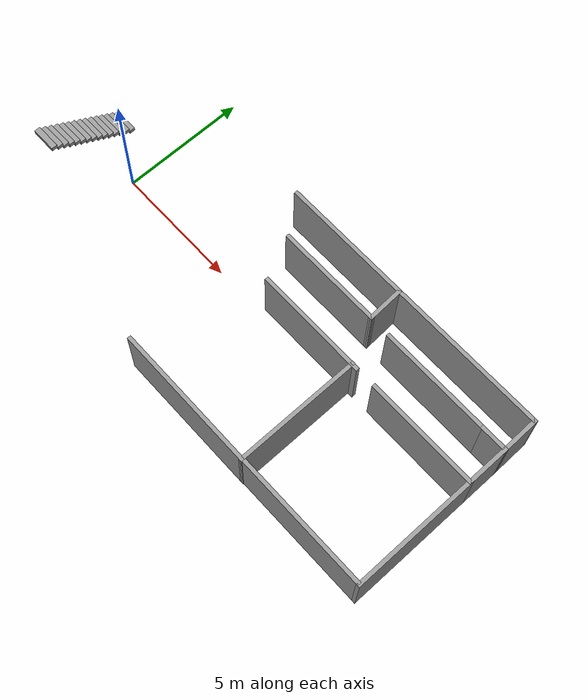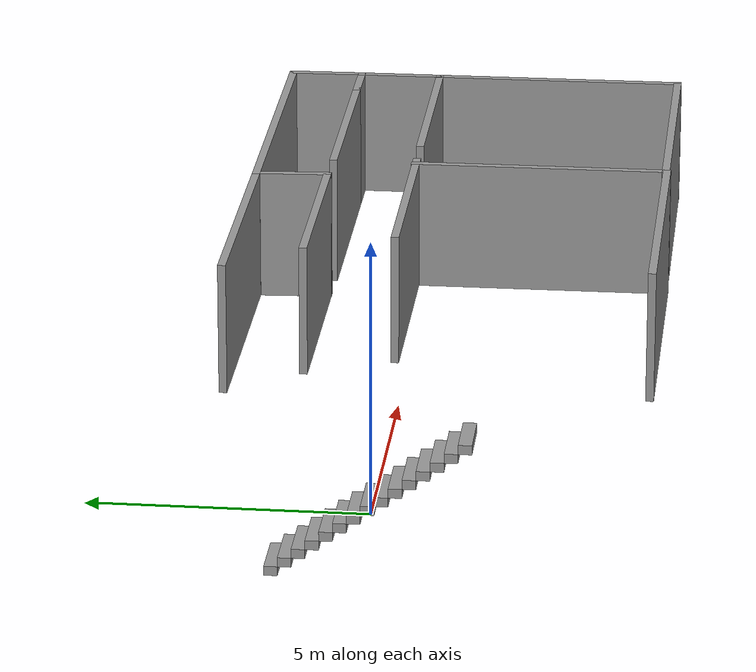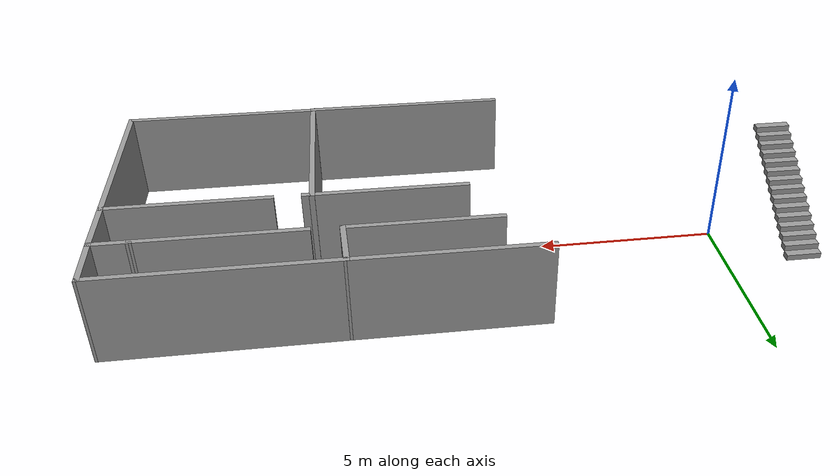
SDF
<sdf version="1.6">
 <world name="default">
  <model name="inco_planta_baja_0">
   <link name="Stairs_0">
    <visual name="Stairs_0_Visual_2">
     <pose>-9.24623 1.59162 0.416667 0 -0 0</pose>
     <geometry><box><size>1 0.233333 0.166667</size></box></geometry>
     <material>
      <script><uri>file://media/materials/scripts/gazebo.material</uri><name>Gazebo/Grey</name></script>
      <ambient>1 1 1 1</ambient>
      <diffuse>0.7 0.7 0.7 1</diffuse>
      <specular>0.01 0.01 0.01 1</specular>
      <emissive>0 0 0 1</emissive>
     </material>
    </visual>
    <visual name="Stairs_0_Visual_0">
     <pose>-9.24623 2.05829 0.083333 0 -0 0</pose>
     <geometry><box><size>1 0.233333 0.166667</size></box></geometry>
     <material>
      <script><uri>file://media/materials/scripts/gazebo.material</uri><name>Gazebo/Grey</name></script>
      <ambient>1 1 1 1</ambient>
      <diffuse>0.7 0.7 0.7 1</diffuse>
      <specular>0.01 0.01 0.01 1</specular>
      <emissive>0 0 0 1</emissive>
     </material>
    </visual>
    <visual name="Stairs_0_Visual_1">
     <pose>-9.24623 1.82496 0.25 0 -0 0</pose>
     <geometry><box><size>1 0.233333 0.166667</size></box></geometry>
     <material>
      <script><uri>file://media/materials/scripts/gazebo.material</uri><name>Gazebo/Grey</name></script>
      <ambient>1 1 1 1</ambient>
      <diffuse>0.7 0.7 0.7 1</diffuse>
      <specular>0.01 0.01 0.01 1</specular>
      <emissive>0 0 0 1</emissive>
     </material>
    </visual>
    <visual name="Stairs_0_Visual_3">
     <pose>-9.24623 1.35829 0.583333 0 -0 0</pose>
     <geometry><box><size>1 0.233333 0.166667</size></box></geometry>
     <material>
      <script><uri>file://media/materials/scripts/gazebo.material</uri><name>Gazebo/Grey</name></script>
      <ambient>1 1 1 1</ambient>
      <diffuse>0.7 0.7 0.7 1</diffuse>
      <specular>0.01 0.01 0.01 1</specular>
      <emissive>0 0 0 1</emissive>
     </material>
    </visual>
    <visual name="Stairs_0_Visual_4">
     <pose>-9.24623 1.12495 0.75 0 -0 0</pose>
     <geometry><box><size>1 0.233333 0.166667</size></box></geometry>
     <material>
      <script><uri>file://media/materials/scripts/gazebo.material</uri><name>Gazebo/Grey</name></script>
      <ambient>1 1 1 1</ambient>
      <diffuse>0.7 0.7 0.7 1</diffuse>
      <specular>0.01 0.01 0.01 1</specular>
      <emissive>0 0 0 1</emissive>
     </material>
    </visual>
    <visual name="Stairs_0_Visual_5">
     <pose>-9.24623 0.891622 0.916667 0 -0 0</pose>
     <geometry><box><size>1 0.233333 0.166667</size></box></geometry>
     <material>
      <script><uri>file://media/materials/scripts/gazebo.material</uri><name>Gazebo/Grey</name></script>
      <ambient>1 1 1 1</ambient>
      <diffuse>0.7 0.7 0.7 1</diffuse>
      <specular>0.01 0.01 0.01 1</specular>
      <emissive>0 0 0 1</emissive>
     </material>
    </visual>
    <visual name="Stairs_0_Visual_6">
     <pose>-9.24623 0.658289 1.08333 0 -0 0</pose>
     <geometry><box><size>1 0.233333 0.166667</size></box></geometry>
     <material>
      <script><uri>file://media/materials/scripts/gazebo.material</uri><name>Gazebo/Grey</name></script>
      <ambient>1 1 1 1</ambient>
      <diffuse>0.7 0.7 0.7 1</diffuse>
      <specular>0.01 0.01 0.01 1</specular>
      <emissive>0 0 0 1</emissive>
     </material>
    </visual>
    <visual name="Stairs_0_Visual_8">
     <pose>-9.24623 0.191622 1.41667 0 -0 0</pose>
     <geometry><box><size>1 0.233333 0.166667</size></box></geometry>
     <material>
      <script><uri>file://media/materials/scripts/gazebo.material</uri><name>Gazebo/Grey</name></script>
      <ambient>1 1 1 1</ambient>
      <diffuse>0.7 0.7 0.7 1</diffuse>
      <specular>0.01 0.01 0.01 1</specular>
      <emissive>0 0 0 1</emissive>
     </material>
    </visual>
    <visual name="Stairs_0_Visual_7">
     <pose>-9.24623 0.424955 1.25 0 -0 0</pose>
     <geometry><box><size>1 0.233333 0.166667</size></box></geometry>
     <material>
      <script><uri>file://media/materials/scripts/gazebo.material</uri><name>Gazebo/Grey</name></script>
      <ambient>1 1 1 1</ambient>
      <diffuse>0.7 0.7 0.7 1</diffuse>
      <specular>0.01 0.01 0.01 1</specular>
      <emissive>0 0 0 1</emissive>
     </material>
    </visual>
    <visual name="Stairs_0_Visual_9">
     <pose>-9.24623 -0.041711 1.58333 0 -0 0</pose>
     <geometry><box><size>1 0.233333 0.166667</size></box></geometry>
     <material>
      <script><uri>file://media/materials/scripts/gazebo.material</uri><name>Gazebo/Grey</name></script>
      <ambient>1 1 1 1</ambient>
      <diffuse>0.7 0.7 0.7 1</diffuse>
      <specular>0.01 0.01 0.01 1</specular>
      <emissive>0 0 0 1</emissive>
     </material>
    </visual>
    <visual name="Stairs_0_Visual_10">
     <pose>-9.24623 -0.275045 1.75 0 -0 0</pose>
     <geometry><box><size>1 0.233333 0.166667</size></box></geometry>
     <material>
      <script><uri>file://media/materials/scripts/gazebo.material</uri><name>Gazebo/Grey</name></script>
      <ambient>1 1 1 1</ambient>
      <diffuse>0.7 0.7 0.7 1</diffuse>
      <specular>0.01 0.01 0.01 1</specular>
      <emissive>0 0 0 1</emissive>
     </material>
    </visual>
    <visual name="Stairs_0_Visual_11">
     <pose>-9.24623 -0.508378 1.91667 0 -0 0</pose>
     <geometry><box><size>1 0.233333 0.166667</size></box></geometry>
     <material>
      <script><uri>file://media/materials/scripts/gazebo.material</uri><name>Gazebo/Grey</name></script>
      <ambient>1 1 1 1</ambient>
      <diffuse>0.7 0.7 0.7 1</diffuse>
      <specular>0.01 0.01 0.01 1</specular>
      <emissive>0 0 0 1</emissive>
     </material>
    </visual>
    <visual name="Stairs_0_Visual_12">
     <pose>-9.24623 -0.741711 2.08333 0 -0 0</pose>
     <geometry><box><size>1 0.233333 0.166667</size></box></geometry>
     <material>
      <script><uri>file://media/materials/scripts/gazebo.material</uri><name>Gazebo/Grey</name></script>
      <ambient>1 1 1 1</ambient>
      <diffuse>0.7 0.7 0.7 1</diffuse>
      <specular>0.01 0.01 0.01 1</specular>
      <emissive>0 0 0 1</emissive>
     </material>
    </visual>
    <visual name="Stairs_0_Visual_13">
     <pose>-9.24623 -0.975045 2.25 0 -0 0</pose>
     <geometry><box><size>1 0.233333 0.166667</size></box></geometry>
     <material>
      <script><uri>file://media/materials/scripts/gazebo.material</uri><name>Gazebo/Grey</name></script>
      <ambient>1 1 1 1</ambient>
      <diffuse>0.7 0.7 0.7 1</diffuse>
      <specular>0.01 0.01 0.01 1</specular>
      <emissive>0 0 0 1</emissive>
     </material>
    </visual>
    <visual name="Stairs_0_Visual_14">
     <pose>-9.24623 -1.20838 2.41667 0 -0 0</pose>
     <geometry><box><size>1 0.233333 0.166667</size></box></geometry>
     <material>
      <script><uri>file://media/materials/scripts/gazebo.material</uri><name>Gazebo/Grey</name></script>
      <ambient>1 1 1 1</ambient>
      <diffuse>0.7 0.7 0.7 1</diffuse>
      <specular>0.01 0.01 0.01 1</specular>
      <emissive>0 0 0 1</emissive>
     </material>
    </visual>
    <collision name="Stairs_0_Collision_0">
     <pose>-9.24623 2.05829 0.083333 0 -0 0</pose>
     <geometry><box><size>1 0.233333 0.166667</size></box></geometry>
     <surface>
      <friction>
       <ode><mu>1</mu><mu2>1</mu2><fdir1>0 0 0</fdir1><slip1>0</slip1><slip2>0</slip2></ode>
       <torsional>
        <coefficient>1</coefficient>
        <patch_radius>0</patch_radius>
        <surface_radius>0</surface_radius>
        <use_patch_radius>1</use_patch_radius>
        <ode><slip>0</slip></ode>
       </torsional>
      </friction>
      <bounce><restitution_coefficient>0</restitution_coefficient><threshold>1e+06</threshold></bounce>
      <contact>
       <collide_without_contact>0</collide_without_contact>
       <collide_without_contact_bitmask>1</collide_without_contact_bitmask>
       <collide_bitmask>1</collide_bitmask>
       <ode>
        <soft_cfm>0</soft_cfm>
        <soft_erp>0.2</soft_erp>
        <kp>1e+13</kp>
        <kd>1</kd>
        <max_vel>0.01</max_vel>
        <min_depth>0</min_depth>
       </ode>
       <bullet>
        <split_impulse>1</split_impulse>
        <split_impulse_penetration_threshold>-0.01</split_impulse_penetration_threshold>
        <soft_cfm>0</soft_cfm>
        <soft_erp>0.2</soft_erp>
        <kp>1e+13</kp>
        <kd>1</kd>
       </bullet>
      </contact>
     </surface>
    </collision>
    <collision name="Stairs_0_Collision_1">
     <pose>-9.24623 1.82496 0.25 0 -0 0</pose>
     <geometry><box><size>1 0.233333 0.166667</size></box></geometry>
     <surface>
      <friction>
       <ode><mu>1</mu><mu2>1</mu2><fdir1>0 0 0</fdir1><slip1>0</slip1><slip2>0</slip2></ode>
       <torsional>
        <coefficient>1</coefficient>
        <patch_radius>0</patch_radius>
        <surface_radius>0</surface_radius>
        <use_patch_radius>1</use_patch_radius>
        <ode><slip>0</slip></ode>
       </torsional>
      </friction>
      <bounce><restitution_coefficient>0</restitution_coefficient><threshold>1e+06</threshold></bounce>
      <contact>
       <collide_without_contact>0</collide_without_contact>
       <collide_without_contact_bitmask>1</collide_without_contact_bitmask>
       <collide_bitmask>1</collide_bitmask>
       <ode>
        <soft_cfm>0</soft_cfm>
        <soft_erp>0.2</soft_erp>
        <kp>1e+13</kp>
        <kd>1</kd>
        <max_vel>0.01</max_vel>
        <min_depth>0</min_depth>
       </ode>
       <bullet>
        <split_impulse>1</split_impulse>
        <split_impulse_penetration_threshold>-0.01</split_impulse_penetration_threshold>
        <soft_cfm>0</soft_cfm>
        <soft_erp>0.2</soft_erp>
        <kp>1e+13</kp>
        <kd>1</kd>
       </bullet>
      </contact>
     </surface>
    </collision>
    <collision name="Stairs_0_Collision_7">
     <pose>-9.24623 0.424955 1.25 0 -0 0</pose>
     <geometry><box><size>1 0.233333 0.166667</size></box></geometry>
     <surface>
      <friction>
       <ode><mu>1</mu><mu2>1</mu2><fdir1>0 0 0</fdir1><slip1>0</slip1><slip2>0</slip2></ode>
       <torsional>
        <coefficient>1</coefficient>
        <patch_radius>0</patch_radius>
        <surface_radius>0</surface_radius>
        <use_patch_radius>1</use_patch_radius>
        <ode><slip>0</slip></ode>
       </torsional>
      </friction>
      <bounce><restitution_coefficient>0</restitution_coefficient><threshold>1e+06</threshold></bounce>
      <contact>
       <collide_without_contact>0</collide_without_contact>
       <collide_without_contact_bitmask>1</collide_without_contact_bitmask>
       <collide_bitmask>1</collide_bitmask>
       <ode>
        <soft_cfm>0</soft_cfm>
        <soft_erp>0.2</soft_erp>
        <kp>1e+13</kp>
        <kd>1</kd>
        <max_vel>0.01</max_vel>
        <min_depth>0</min_depth>
       </ode>
       <bullet>
        <split_impulse>1</split_impulse>
        <split_impulse_penetration_threshold>-0.01</split_impulse_penetration_threshold>
        <soft_cfm>0</soft_cfm>
        <soft_erp>0.2</soft_erp>
        <kp>1e+13</kp>
        <kd>1</kd>
       </bullet>
      </contact>
     </surface>
    </collision>
    <collision name="Stairs_0_Collision_2">
     <pose>-9.24623 1.59162 0.416667 0 -0 0</pose>
     <geometry><box><size>1 0.233333 0.166667</size></box></geometry>
     <surface>
      <friction>
       <ode><mu>1</mu><mu2>1</mu2><fdir1>0 0 0</fdir1><slip1>0</slip1><slip2>0</slip2></ode>
       <torsional>
        <coefficient>1</coefficient>
        <patch_radius>0</patch_radius>
        <surface_radius>0</surface_radius>
        <use_patch_radius>1</use_patch_radius>
        <ode><slip>0</slip></ode>
       </torsional>
      </friction>
      <bounce><restitution_coefficient>0</restitution_coefficient><threshold>1e+06</threshold></bounce>
      <contact>
       <collide_without_contact>0</collide_without_contact>
       <collide_without_contact_bitmask>1</collide_without_contact_bitmask>
       <collide_bitmask>1</collide_bitmask>
       <ode>
        <soft_cfm>0</soft_cfm>
        <soft_erp>0.2</soft_erp>
        <kp>1e+13</kp>
        <kd>1</kd>
        <max_vel>0.01</max_vel>
        <min_depth>0</min_depth>
       </ode>
       <bullet>
        <split_impulse>1</split_impulse>
        <split_impulse_penetration_threshold>-0.01</split_impulse_penetration_threshold>
        <soft_cfm>0</soft_cfm>
        <soft_erp>0.2</soft_erp>
        <kp>1e+13</kp>
        <kd>1</kd>
       </bullet>
      </contact>
     </surface>
    </collision>
    <collision name="Stairs_0_Collision_3">
     <pose>-9.24623 1.35829 0.583333 0 -0 0</pose>
     <geometry><box><size>1 0.233333 0.166667</size></box></geometry>
     <surface>
      <friction>
       <ode><mu>1</mu><mu2>1</mu2><fdir1>0 0 0</fdir1><slip1>0</slip1><slip2>0</slip2></ode>
       <torsional>
        <coefficient>1</coefficient>
        <patch_radius>0</patch_radius>
        <surface_radius>0</surface_radius>
        <use_patch_radius>1</use_patch_radius>
        <ode><slip>0</slip></ode>
       </torsional>
      </friction>
      <bounce><restitution_coefficient>0</restitution_coefficient><threshold>1e+06</threshold></bounce>
      <contact>
       <collide_without_contact>0</collide_without_contact>
       <collide_without_contact_bitmask>1</collide_without_contact_bitmask>
       <collide_bitmask>1</collide_bitmask>
       <ode>
        <soft_cfm>0</soft_cfm>
        <soft_erp>0.2</soft_erp>
        <kp>1e+13</kp>
        <kd>1</kd>
        <max_vel>0.01</max_vel>
        <min_depth>0</min_depth>
       </ode>
       <bullet>
        <split_impulse>1</split_impulse>
        <split_impulse_penetration_threshold>-0.01</split_impulse_penetration_threshold>
        <soft_cfm>0</soft_cfm>
        <soft_erp>0.2</soft_erp>
        <kp>1e+13</kp>
        <kd>1</kd>
       </bullet>
      </contact>
     </surface>
    </collision>
    <collision name="Stairs_0_Collision_4">
     <pose>-9.24623 1.12495 0.75 0 -0 0</pose>
     <geometry><box><size>1 0.233333 0.166667</size></box></geometry>
     <surface>
      <friction>
       <ode><mu>1</mu><mu2>1</mu2><fdir1>0 0 0</fdir1><slip1>0</slip1><slip2>0</slip2></ode>
       <torsional>
        <coefficient>1</coefficient>
        <patch_radius>0</patch_radius>
        <surface_radius>0</surface_radius>
        <use_patch_radius>1</use_patch_radius>
        <ode><slip>0</slip></ode>
       </torsional>
      </friction>
      <bounce><restitution_coefficient>0</restitution_coefficient><threshold>1e+06</threshold></bounce>
      <contact>
       <collide_without_contact>0</collide_without_contact>
       <collide_without_contact_bitmask>1</collide_without_contact_bitmask>
       <collide_bitmask>1</collide_bitmask>
       <ode>
        <soft_cfm>0</soft_cfm>
        <soft_erp>0.2</soft_erp>
        <kp>1e+13</kp>
        <kd>1</kd>
        <max_vel>0.01</max_vel>
        <min_depth>0</min_depth>
       </ode>
       <bullet>
        <split_impulse>1</split_impulse>
        <split_impulse_penetration_threshold>-0.01</split_impulse_penetration_threshold>
        <soft_cfm>0</soft_cfm>
        <soft_erp>0.2</soft_erp>
        <kp>1e+13</kp>
        <kd>1</kd>
       </bullet>
      </contact>
     </surface>
    </collision>
    <collision name="Stairs_0_Collision_5">
     <pose>-9.24623 0.891622 0.916667 0 -0 0</pose>
     <geometry><box><size>1 0.233333 0.166667</size></box></geometry>
     <surface>
      <friction>
       <ode><mu>1</mu><mu2>1</mu2><fdir1>0 0 0</fdir1><slip1>0</slip1><slip2>0</slip2></ode>
       <torsional>
        <coefficient>1</coefficient>
        <patch_radius>0</patch_radius>
        <surface_radius>0</surface_radius>
        <use_patch_radius>1</use_patch_radius>
        <ode><slip>0</slip></ode>
       </torsional>
      </friction>
      <bounce><restitution_coefficient>0</restitution_coefficient><threshold>1e+06</threshold></bounce>
      <contact>
       <collide_without_contact>0</collide_without_contact>
       <collide_without_contact_bitmask>1</collide_without_contact_bitmask>
       <collide_bitmask>1</collide_bitmask>
       <ode>
        <soft_cfm>0</soft_cfm>
        <soft_erp>0.2</soft_erp>
        <kp>1e+13</kp>
        <kd>1</kd>
        <max_vel>0.01</max_vel>
        <min_depth>0</min_depth>
       </ode>
       <bullet>
        <split_impulse>1</split_impulse>
        <split_impulse_penetration_threshold>-0.01</split_impulse_penetration_threshold>
        <soft_cfm>0</soft_cfm>
        <soft_erp>0.2</soft_erp>
        <kp>1e+13</kp>
        <kd>1</kd>
       </bullet>
      </contact>
     </surface>
    </collision>
    <collision name="Stairs_0_Collision_6">
     <pose>-9.24623 0.658289 1.08333 0 -0 0</pose>
     <geometry><box><size>1 0.233333 0.166667</size></box></geometry>
     <surface>
      <friction>
       <ode><mu>1</mu><mu2>1</mu2><fdir1>0 0 0</fdir1><slip1>0</slip1><slip2>0</slip2></ode>
       <torsional>
        <coefficient>1</coefficient>
        <patch_radius>0</patch_radius>
        <surface_radius>0</surface_radius>
        <use_patch_radius>1</use_patch_radius>
        <ode><slip>0</slip></ode>
       </torsional>
      </friction>
      <bounce><restitution_coefficient>0</restitution_coefficient><threshold>1e+06</threshold></bounce>
      <contact>
       <collide_without_contact>0</collide_without_contact>
       <collide_without_contact_bitmask>1</collide_without_contact_bitmask>
       <collide_bitmask>1</collide_bitmask>
       <ode>
        <soft_cfm>0</soft_cfm>
        <soft_erp>0.2</soft_erp>
        <kp>1e+13</kp>
        <kd>1</kd>
        <max_vel>0.01</max_vel>
        <min_depth>0</min_depth>
       </ode>
       <bullet>
        <split_impulse>1</split_impulse>
        <split_impulse_penetration_threshold>-0.01</split_impulse_penetration_threshold>
        <soft_cfm>0</soft_cfm>
        <soft_erp>0.2</soft_erp>
        <kp>1e+13</kp>
        <kd>1</kd>
       </bullet>
      </contact>
     </surface>
    </collision>
    <collision name="Stairs_0_Collision_8">
     <pose>-9.24623 0.191622 1.41667 0 -0 0</pose>
     <geometry><box><size>1 0.233333 0.166667</size></box></geometry>
     <surface>
      <friction>
       <ode><mu>1</mu><mu2>1</mu2><fdir1>0 0 0</fdir1><slip1>0</slip1><slip2>0</slip2></ode>
       <torsional>
        <coefficient>1</coefficient>
        <patch_radius>0</patch_radius>
        <surface_radius>0</surface_radius>
        <use_patch_radius>1</use_patch_radius>
        <ode><slip>0</slip></ode>
       </torsional>
      </friction>
      <bounce><restitution_coefficient>0</restitution_coefficient><threshold>1e+06</threshold></bounce>
      <contact>
       <collide_without_contact>0</collide_without_contact>
       <collide_without_contact_bitmask>1</collide_without_contact_bitmask>
       <collide_bitmask>1</collide_bitmask>
       <ode>
        <soft_cfm>0</soft_cfm>
        <soft_erp>0.2</soft_erp>
        <kp>1e+13</kp>
        <kd>1</kd>
        <max_vel>0.01</max_vel>
        <min_depth>0</min_depth>
       </ode>
       <bullet>
        <split_impulse>1</split_impulse>
        <split_impulse_penetration_threshold>-0.01</split_impulse_penetration_threshold>
        <soft_cfm>0</soft_cfm>
        <soft_erp>0.2</soft_erp>
        <kp>1e+13</kp>
        <kd>1</kd>
       </bullet>
      </contact>
     </surface>
    </collision>
    <collision name="Stairs_0_Collision_9">
     <pose>-9.24623 -0.041711 1.58333 0 -0 0</pose>
     <geometry><box><size>1 0.233333 0.166667</size></box></geometry>
     <surface>
      <friction>
       <ode><mu>1</mu><mu2>1</mu2><fdir1>0 0 0</fdir1><slip1>0</slip1><slip2>0</slip2></ode>
       <torsional>
        <coefficient>1</coefficient>
        <patch_radius>0</patch_radius>
        <surface_radius>0</surface_radius>
        <use_patch_radius>1</use_patch_radius>
        <ode><slip>0</slip></ode>
       </torsional>
      </friction>
      <bounce><restitution_coefficient>0</restitution_coefficient><threshold>1e+06</threshold></bounce>
      <contact>
       <collide_without_contact>0</collide_without_contact>
       <collide_without_contact_bitmask>1</collide_without_contact_bitmask>
       <collide_bitmask>1</collide_bitmask>
       <ode>
        <soft_cfm>0</soft_cfm>
        <soft_erp>0.2</soft_erp>
        <kp>1e+13</kp>
        <kd>1</kd>
        <max_vel>0.01</max_vel>
        <min_depth>0</min_depth>
       </ode>
       <bullet>
        <split_impulse>1</split_impulse>
        <split_impulse_penetration_threshold>-0.01</split_impulse_penetration_threshold>
        <soft_cfm>0</soft_cfm>
        <soft_erp>0.2</soft_erp>
        <kp>1e+13</kp>
        <kd>1</kd>
       </bullet>
      </contact>
     </surface>
    </collision>
    <collision name="Stairs_0_Collision_10">
     <pose>-9.24623 -0.275045 1.75 0 -0 0</pose>
     <geometry><box><size>1 0.233333 0.166667</size></box></geometry>
     <surface>
      <friction>
       <ode><mu>1</mu><mu2>1</mu2><fdir1>0 0 0</fdir1><slip1>0</slip1><slip2>0</slip2></ode>
       <torsional>
        <coefficient>1</coefficient>
        <patch_radius>0</patch_radius>
        <surface_radius>0</surface_radius>
        <use_patch_radius>1</use_patch_radius>
        <ode><slip>0</slip></ode>
       </torsional>
      </friction>
      <bounce><restitution_coefficient>0</restitution_coefficient><threshold>1e+06</threshold></bounce>
      <contact>
       <collide_without_contact>0</collide_without_contact>
       <collide_without_contact_bitmask>1</collide_without_contact_bitmask>
       <collide_bitmask>1</collide_bitmask>
       <ode>
        <soft_cfm>0</soft_cfm>
        <soft_erp>0.2</soft_erp>
        <kp>1e+13</kp>
        <kd>1</kd>
        <max_vel>0.01</max_vel>
        <min_depth>0</min_depth>
       </ode>
       <bullet>
        <split_impulse>1</split_impulse>
        <split_impulse_penetration_threshold>-0.01</split_impulse_penetration_threshold>
        <soft_cfm>0</soft_cfm>
        <soft_erp>0.2</soft_erp>
        <kp>1e+13</kp>
        <kd>1</kd>
       </bullet>
      </contact>
     </surface>
    </collision>
    <collision name="Stairs_0_Collision_11">
     <pose>-9.24623 -0.508378 1.91667 0 -0 0</pose>
     <geometry><box><size>1 0.233333 0.166667</size></box></geometry>
     <surface>
      <friction>
       <ode><mu>1</mu><mu2>1</mu2><fdir1>0 0 0</fdir1><slip1>0</slip1><slip2>0</slip2></ode>
       <torsional>
        <coefficient>1</coefficient>
        <patch_radius>0</patch_radius>
        <surface_radius>0</surface_radius>
        <use_patch_radius>1</use_patch_radius>
        <ode><slip>0</slip></ode>
       </torsional>
      </friction>
      <bounce><restitution_coefficient>0</restitution_coefficient><threshold>1e+06</threshold></bounce>
      <contact>
       <collide_without_contact>0</collide_without_contact>
       <collide_without_contact_bitmask>1</collide_without_contact_bitmask>
       <collide_bitmask>1</collide_bitmask>
       <ode>
        <soft_cfm>0</soft_cfm>
        <soft_erp>0.2</soft_erp>
        <kp>1e+13</kp>
        <kd>1</kd>
        <max_vel>0.01</max_vel>
        <min_depth>0</min_depth>
       </ode>
       <bullet>
        <split_impulse>1</split_impulse>
        <split_impulse_penetration_threshold>-0.01</split_impulse_penetration_threshold>
        <soft_cfm>0</soft_cfm>
        <soft_erp>0.2</soft_erp>
        <kp>1e+13</kp>
        <kd>1</kd>
       </bullet>
      </contact>
     </surface>
    </collision>
    <collision name="Stairs_0_Collision_13">
     <pose>-9.24623 -0.975045 2.25 0 -0 0</pose>
     <geometry><box><size>1 0.233333 0.166667</size></box></geometry>
     <surface>
      <friction>
       <ode><mu>1</mu><mu2>1</mu2><fdir1>0 0 0</fdir1><slip1>0</slip1><slip2>0</slip2></ode>
       <torsional>
        <coefficient>1</coefficient>
        <patch_radius>0</patch_radius>
        <surface_radius>0</surface_radius>
        <use_patch_radius>1</use_patch_radius>
        <ode><slip>0</slip></ode>
       </torsional>
      </friction>
      <bounce><restitution_coefficient>0</restitution_coefficient><threshold>1e+06</threshold></bounce>
      <contact>
       <collide_without_contact>0</collide_without_contact>
       <collide_without_contact_bitmask>1</collide_without_contact_bitmask>
       <collide_bitmask>1</collide_bitmask>
       <ode>
        <soft_cfm>0</soft_cfm>
        <soft_erp>0.2</soft_erp>
        <kp>1e+13</kp>
        <kd>1</kd>
        <max_vel>0.01</max_vel>
        <min_depth>0</min_depth>
       </ode>
       <bullet>
        <split_impulse>1</split_impulse>
        <split_impulse_penetration_threshold>-0.01</split_impulse_penetration_threshold>
        <soft_cfm>0</soft_cfm>
        <soft_erp>0.2</soft_erp>
        <kp>1e+13</kp>
        <kd>1</kd>
       </bullet>
      </contact>
     </surface>
    </collision>
    <collision name="Stairs_0_Collision_12">
     <pose>-9.24623 -0.741711 2.08333 0 -0 0</pose>
     <geometry><box><size>1 0.233333 0.166667</size></box></geometry>
     <surface>
      <friction>
       <ode><mu>1</mu><mu2>1</mu2><fdir1>0 0 0</fdir1><slip1>0</slip1><slip2>0</slip2></ode>
       <torsional>
        <coefficient>1</coefficient>
        <patch_radius>0</patch_radius>
        <surface_radius>0</surface_radius>
        <use_patch_radius>1</use_patch_radius>
        <ode><slip>0</slip></ode>
       </torsional>
      </friction>
      <bounce><restitution_coefficient>0</restitution_coefficient><threshold>1e+06</threshold></bounce>
      <contact>
       <collide_without_contact>0</collide_without_contact>
       <collide_without_contact_bitmask>1</collide_without_contact_bitmask>
       <collide_bitmask>1</collide_bitmask>
       <ode>
        <soft_cfm>0</soft_cfm>
        <soft_erp>0.2</soft_erp>
        <kp>1e+13</kp>
        <kd>1</kd>
        <max_vel>0.01</max_vel>
        <min_depth>0</min_depth>
       </ode>
       <bullet>
        <split_impulse>1</split_impulse>
        <split_impulse_penetration_threshold>-0.01</split_impulse_penetration_threshold>
        <soft_cfm>0</soft_cfm>
        <soft_erp>0.2</soft_erp>
        <kp>1e+13</kp>
        <kd>1</kd>
       </bullet>
      </contact>
     </surface>
    </collision>
    <collision name="Stairs_0_Collision_14">
     <pose>-9.24623 -1.20838 2.41667 0 -0 0</pose>
     <geometry><box><size>1 0.233333 0.166667</size></box></geometry>
     <surface>
      <friction>
       <ode><mu>1</mu><mu2>1</mu2><fdir1>0 0 0</fdir1><slip1>0</slip1><slip2>0</slip2></ode>
       <torsional>
        <coefficient>1</coefficient>
        <patch_radius>0</patch_radius>
        <surface_radius>0</surface_radius>
        <use_patch_radius>1</use_patch_radius>
        <ode><slip>0</slip></ode>
       </torsional>
      </friction>
      <bounce><restitution_coefficient>0</restitution_coefficient><threshold>1e+06</threshold></bounce>
      <contact>
       <collide_without_contact>0</collide_without_contact>
       <collide_without_contact_bitmask>1</collide_without_contact_bitmask>
       <collide_bitmask>1</collide_bitmask>
       <ode>
        <soft_cfm>0</soft_cfm>
        <soft_erp>0.2</soft_erp>
        <kp>1e+13</kp>
        <kd>1</kd>
        <max_vel>0.01</max_vel>
        <min_depth>0</min_depth>
       </ode>
       <bullet>
        <split_impulse>1</split_impulse>
        <split_impulse_penetration_threshold>-0.01</split_impulse_penetration_threshold>
        <soft_cfm>0</soft_cfm>
        <soft_erp>0.2</soft_erp>
        <kp>1e+13</kp>
        <kd>1</kd>
       </bullet>
      </contact>
     </surface>
    </collision>
   </link>
   <link name="Wall_126">
    <pose>9.78501 1.72965 0 0 -0 1.5708</pose>
    <visual name="Wall_126_Visual">
     <pose>0 0 1.25 0 -0 0</pose>
     <geometry><box><size>1.75 0.15 2.5</size></box></geometry>
     <material>
      <script><uri>file://media/materials/scripts/gazebo.material</uri><name>Gazebo/Grey</name></script>
      <ambient>1 1 1 1</ambient>
      <diffuse>0.7 0.7 0.7 1</diffuse>
      <specular>0.01 0.01 0.01 1</specular>
      <emissive>0 0 0 1</emissive>
     </material>
    </visual>
    <collision name="Wall_126_Collision">
     <pose>0 0 1.25 0 -0 0</pose>
     <geometry><box><size>1.75 0.15 2.5</size></box></geometry>
     <surface>
      <friction>
       <ode><mu>1</mu><mu2>1</mu2><fdir1>0 0 0</fdir1><slip1>0</slip1><slip2>0</slip2></ode>
       <torsional>
        <coefficient>1</coefficient>
        <patch_radius>0</patch_radius>
        <surface_radius>0</surface_radius>
        <use_patch_radius>1</use_patch_radius>
        <ode><slip>0</slip></ode>
       </torsional>
      </friction>
      <bounce><restitution_coefficient>0</restitution_coefficient><threshold>1e+06</threshold></bounce>
      <contact>
       <collide_without_contact>0</collide_without_contact>
       <collide_without_contact_bitmask>1</collide_without_contact_bitmask>
       <collide_bitmask>1</collide_bitmask>
       <ode>
        <soft_cfm>0</soft_cfm>
        <soft_erp>0.2</soft_erp>
        <kp>1e+13</kp>
        <kd>1</kd>
        <max_vel>0.01</max_vel>
        <min_depth>0</min_depth>
       </ode>
       <bullet>
        <split_impulse>1</split_impulse>
        <split_impulse_penetration_threshold>-0.01</split_impulse_penetration_threshold>
        <soft_cfm>0</soft_cfm>
        <soft_erp>0.2</soft_erp>
        <kp>1e+13</kp>
        <kd>1</kd>
       </bullet>
      </contact>
     </surface>
    </collision>
   </link>
   <link name="Wall_127">
    <pose>9.29747 2.53004 0 0 -0 3.1408</pose>
    <visual name="Wall_127_Visual">
     <pose>0 0 1.25 0 -0 0</pose>
     <geometry><box><size>1.12508 0.15 2.5</size></box></geometry>
     <material>
      <script><uri>file://media/materials/scripts/gazebo.material</uri><name>Gazebo/Grey</name></script>
      <ambient>1 1 1 1</ambient>
      <diffuse>0.7 0.7 0.7 1</diffuse>
      <specular>0.01 0.01 0.01 1</specular>
      <emissive>0 0 0 1</emissive>
     </material>
    </visual>
    <collision name="Wall_127_Collision">
     <pose>0 0 1.25 0 -0 0</pose>
     <geometry><box><size>1.12508 0.15 2.5</size></box></geometry>
     <surface>
      <friction>
       <ode><mu>1</mu><mu2>1</mu2><fdir1>0 0 0</fdir1><slip1>0</slip1><slip2>0</slip2></ode>
       <torsional>
        <coefficient>1</coefficient>
        <patch_radius>0</patch_radius>
        <surface_radius>0</surface_radius>
        <use_patch_radius>1</use_patch_radius>
        <ode><slip>0</slip></ode>
       </torsional>
      </friction>
      <bounce><restitution_coefficient>0</restitution_coefficient><threshold>1e+06</threshold></bounce>
      <contact>
       <collide_without_contact>0</collide_without_contact>
       <collide_without_contact_bitmask>1</collide_without_contact_bitmask>
       <collide_bitmask>1</collide_bitmask>
       <ode>
        <soft_cfm>0</soft_cfm>
        <soft_erp>0.2</soft_erp>
        <kp>1e+13</kp>
        <kd>1</kd>
        <max_vel>0.01</max_vel>
        <min_depth>0</min_depth>
       </ode>
       <bullet>
        <split_impulse>1</split_impulse>
        <split_impulse_penetration_threshold>-0.01</split_impulse_penetration_threshold>
        <soft_cfm>0</soft_cfm>
        <soft_erp>0.2</soft_erp>
        <kp>1e+13</kp>
        <kd>1</kd>
       </bullet>
      </contact>
     </surface>
    </collision>
   </link>
   <link name="Wall_132">
    <pose>1.56221 -3.9268 0 0 0 -0.003633</pose>
    <visual name="Wall_132_Visual">
     <pose>0 0 1.25 0 -0 0</pose>
     <geometry><box><size>5.75 0.15 2.5</size></box></geometry>
     <material>
      <script><uri>file://media/materials/scripts/gazebo.material</uri><name>Gazebo/Grey</name></script>
      <ambient>1 1 1 1</ambient>
      <diffuse>0.7 0.7 0.7 1</diffuse>
      <specular>0.01 0.01 0.01 1</specular>
      <emissive>0 0 0 1</emissive>
     </material>
    </visual>
    <collision name="Wall_132_Collision">
     <pose>0 0 1.25 0 -0 0</pose>
     <geometry><box><size>5.75 0.15 2.5</size></box></geometry>
     <surface>
      <friction>
       <ode><mu>1</mu><mu2>1</mu2><fdir1>0 0 0</fdir1><slip1>0</slip1><slip2>0</slip2></ode>
       <torsional>
        <coefficient>1</coefficient>
        <patch_radius>0</patch_radius>
        <surface_radius>0</surface_radius>
        <use_patch_radius>1</use_patch_radius>
        <ode><slip>0</slip></ode>
       </torsional>
      </friction>
      <bounce><restitution_coefficient>0</restitution_coefficient><threshold>1e+06</threshold></bounce>
      <contact>
       <collide_without_contact>0</collide_without_contact>
       <collide_without_contact_bitmask>1</collide_without_contact_bitmask>
       <collide_bitmask>1</collide_bitmask>
       <ode>
        <soft_cfm>0</soft_cfm>
        <soft_erp>0.2</soft_erp>
        <kp>1e+13</kp>
        <kd>1</kd>
        <max_vel>0.01</max_vel>
        <min_depth>0</min_depth>
       </ode>
       <bullet>
        <split_impulse>1</split_impulse>
        <split_impulse_penetration_threshold>-0.01</split_impulse_penetration_threshold>
        <soft_cfm>0</soft_cfm>
        <soft_erp>0.2</soft_erp>
        <kp>1e+13</kp>
        <kd>1</kd>
       </bullet>
      </contact>
     </surface>
    </collision>
   </link>
   <link name="Wall_133">
    <pose>4.36221 -1.5018 0 0 -0 1.5708</pose>
    <visual name="Wall_133_Visual">
     <pose>0 0 1.25 0 -0 0</pose>
     <geometry><box><size>5.02034 0.15 2.5</size></box></geometry>
     <material>
      <script><uri>file://media/materials/scripts/gazebo.material</uri><name>Gazebo/Grey</name></script>
      <ambient>1 1 1 1</ambient>
      <diffuse>0.7 0.7 0.7 1</diffuse>
      <specular>0.01 0.01 0.01 1</specular>
      <emissive>0 0 0 1</emissive>
     </material>
    </visual>
    <collision name="Wall_133_Collision">
     <pose>0 0 1.25 0 -0 0</pose>
     <geometry><box><size>5.02034 0.15 2.5</size></box></geometry>
     <surface>
      <friction>
       <ode><mu>1</mu><mu2>1</mu2><fdir1>0 0 0</fdir1><slip1>0</slip1><slip2>0</slip2></ode>
       <torsional>
        <coefficient>1</coefficient>
        <patch_radius>0</patch_radius>
        <surface_radius>0</surface_radius>
        <use_patch_radius>1</use_patch_radius>
        <ode><slip>0</slip></ode>
       </torsional>
      </friction>
      <bounce><restitution_coefficient>0</restitution_coefficient><threshold>1e+06</threshold></bounce>
      <contact>
       <collide_without_contact>0</collide_without_contact>
       <collide_without_contact_bitmask>1</collide_without_contact_bitmask>
       <collide_bitmask>1</collide_bitmask>
       <ode>
        <soft_cfm>0</soft_cfm>
        <soft_erp>0.2</soft_erp>
        <kp>1e+13</kp>
        <kd>1</kd>
        <max_vel>0.01</max_vel>
        <min_depth>0</min_depth>
       </ode>
       <bullet>
        <split_impulse>1</split_impulse>
        <split_impulse_penetration_threshold>-0.01</split_impulse_penetration_threshold>
        <soft_cfm>0</soft_cfm>
        <soft_erp>0.2</soft_erp>
        <kp>1e+13</kp>
        <kd>1</kd>
       </bullet>
      </contact>
     </surface>
    </collision>
   </link>
   <link name="Wall_135">
    <pose>7.03721 -3.91663 0 0 -0 0</pose>
    <visual name="Wall_135_Visual">
     <pose>0 0 1.25 0 -0 0</pose>
     <geometry><box><size>5.5 0.15 2.5</size></box></geometry>
     <material>
      <script><uri>file://media/materials/scripts/gazebo.material</uri><name>Gazebo/Grey</name></script>
      <ambient>1 1 1 1</ambient>
      <diffuse>0.7 0.7 0.7 1</diffuse>
      <specular>0.01 0.01 0.01 1</specular>
      <emissive>0 0 0 1</emissive>
     </material>
    </visual>
    <collision name="Wall_135_Collision">
     <pose>0 0 1.25 0 -0 0</pose>
     <geometry><box><size>5.5 0.15 2.5</size></box></geometry>
     <surface>
      <friction>
       <ode><mu>1</mu><mu2>1</mu2><fdir1>0 0 0</fdir1><slip1>0</slip1><slip2>0</slip2></ode>
       <torsional>
        <coefficient>1</coefficient>
        <patch_radius>0</patch_radius>
        <surface_radius>0</surface_radius>
        <use_patch_radius>1</use_patch_radius>
        <ode><slip>0</slip></ode>
       </torsional>
      </friction>
      <bounce><restitution_coefficient>0</restitution_coefficient><threshold>1e+06</threshold></bounce>
      <contact>
       <collide_without_contact>0</collide_without_contact>
       <collide_without_contact_bitmask>1</collide_without_contact_bitmask>
       <collide_bitmask>1</collide_bitmask>
       <ode>
        <soft_cfm>0</soft_cfm>
        <soft_erp>0.2</soft_erp>
        <kp>1e+13</kp>
        <kd>1</kd>
        <max_vel>0.01</max_vel>
        <min_depth>0</min_depth>
       </ode>
       <bullet>
        <split_impulse>1</split_impulse>
        <split_impulse_penetration_threshold>-0.01</split_impulse_penetration_threshold>
        <soft_cfm>0</soft_cfm>
        <soft_erp>0.2</soft_erp>
        <kp>1e+13</kp>
        <kd>1</kd>
       </bullet>
      </contact>
     </surface>
    </collision>
   </link>
   <link name="Wall_137">
    <pose>9.78501 -1.49535 0 0 0 -1.5708</pose>
    <visual name="Wall_137_Visual">
     <pose>0 0 1.25 0 -0 0</pose>
     <geometry><box><size>5 0.15 2.5</size></box></geometry>
     <material>
      <script><uri>file://media/materials/scripts/gazebo.material</uri><name>Gazebo/Grey</name></script>
      <ambient>1 1 1 1</ambient>
      <diffuse>0.7 0.7 0.7 1</diffuse>
      <specular>0.01 0.01 0.01 1</specular>
      <emissive>0 0 0 1</emissive>
     </material>
    </visual>
    <collision name="Wall_137_Collision">
     <pose>0 0 1.25 0 -0 0</pose>
     <geometry><box><size>5 0.15 2.5</size></box></geometry>
     <surface>
      <friction>
       <ode><mu>1</mu><mu2>1</mu2><fdir1>0 0 0</fdir1><slip1>0</slip1><slip2>0</slip2></ode>
       <torsional>
        <coefficient>1</coefficient>
        <patch_radius>0</patch_radius>
        <surface_radius>0</surface_radius>
        <use_patch_radius>1</use_patch_radius>
        <ode><slip>0</slip></ode>
       </torsional>
      </friction>
      <bounce><restitution_coefficient>0</restitution_coefficient><threshold>1e+06</threshold></bounce>
      <contact>
       <collide_without_contact>0</collide_without_contact>
       <collide_without_contact_bitmask>1</collide_without_contact_bitmask>
       <collide_bitmask>1</collide_bitmask>
       <ode>
        <soft_cfm>0</soft_cfm>
        <soft_erp>0.2</soft_erp>
        <kp>1e+13</kp>
        <kd>1</kd>
        <max_vel>0.01</max_vel>
        <min_depth>0</min_depth>
       </ode>
       <bullet>
        <split_impulse>1</split_impulse>
        <split_impulse_penetration_threshold>-0.01</split_impulse_penetration_threshold>
        <soft_cfm>0</soft_cfm>
        <soft_erp>0.2</soft_erp>
        <kp>1e+13</kp>
        <kd>1</kd>
       </bullet>
      </contact>
     </surface>
    </collision>
   </link>
   <link name="Wall_142">
    <pose>9.77456 3.23289 0 0 0 -1.55594</pose>
    <visual name="Wall_142_Visual">
     <pose>0 0 1.25 0 -0 0</pose>
     <geometry><box><size>1.55664 0.15 2.5</size></box></geometry>
     <material>
      <script><uri>file://media/materials/scripts/gazebo.material</uri><name>Gazebo/Grey</name></script>
      <ambient>1 1 1 1</ambient>
      <diffuse>0.7 0.7 0.7 1</diffuse>
      <specular>0.01 0.01 0.01 1</specular>
      <emissive>0 0 0 1</emissive>
     </material>
    </visual>
    <collision name="Wall_142_Collision">
     <pose>0 0 1.25 0 -0 0</pose>
     <geometry><box><size>1.55664 0.15 2.5</size></box></geometry>
     <surface>
      <friction>
       <ode><mu>1</mu><mu2>1</mu2><fdir1>0 0 0</fdir1><slip1>0</slip1><slip2>0</slip2></ode>
       <torsional>
        <coefficient>1</coefficient>
        <patch_radius>0</patch_radius>
        <surface_radius>0</surface_radius>
        <use_patch_radius>1</use_patch_radius>
        <ode><slip>0</slip></ode>
       </torsional>
      </friction>
      <bounce><restitution_coefficient>0</restitution_coefficient><threshold>1e+06</threshold></bounce>
      <contact>
       <collide_without_contact>0</collide_without_contact>
       <collide_without_contact_bitmask>1</collide_without_contact_bitmask>
       <collide_bitmask>1</collide_bitmask>
       <ode>
        <soft_cfm>0</soft_cfm>
        <soft_erp>0.2</soft_erp>
        <kp>1e+13</kp>
        <kd>1</kd>
        <max_vel>0.01</max_vel>
        <min_depth>0</min_depth>
       </ode>
       <bullet>
        <split_impulse>1</split_impulse>
        <split_impulse_penetration_threshold>-0.01</split_impulse_penetration_threshold>
        <soft_cfm>0</soft_cfm>
        <soft_erp>0.2</soft_erp>
        <kp>1e+13</kp>
        <kd>1</kd>
       </bullet>
      </contact>
     </surface>
    </collision>
   </link>
   <link name="Wall_151">
    <pose>0.966646 3.92355 0 0 -0 0</pose>
    <visual name="Wall_151_Visual">
     <pose>0 0 1.25 0 -0 0</pose>
     <geometry><box><size>5.25 0.15 2.5</size></box></geometry>
     <material>
      <script><uri>file://media/materials/scripts/gazebo.material</uri><name>Gazebo/Grey</name></script>
      <ambient>1 1 1 1</ambient>
      <diffuse>0.7 0.7 0.7 1</diffuse>
      <specular>0.01 0.01 0.01 1</specular>
      <emissive>0 0 0 1</emissive>
     </material>
    </visual>
    <collision name="Wall_151_Collision">
     <pose>0 0 1.25 0 -0 0</pose>
     <geometry><box><size>5.25 0.15 2.5</size></box></geometry>
     <surface>
      <friction>
       <ode><mu>1</mu><mu2>1</mu2><fdir1>0 0 0</fdir1><slip1>0</slip1><slip2>0</slip2></ode>
       <torsional>
        <coefficient>1</coefficient>
        <patch_radius>0</patch_radius>
        <surface_radius>0</surface_radius>
        <use_patch_radius>1</use_patch_radius>
        <ode><slip>0</slip></ode>
       </torsional>
      </friction>
      <bounce><restitution_coefficient>0</restitution_coefficient><threshold>1e+06</threshold></bounce>
      <contact>
       <collide_without_contact>0</collide_without_contact>
       <collide_without_contact_bitmask>1</collide_without_contact_bitmask>
       <collide_bitmask>1</collide_bitmask>
       <ode>
        <soft_cfm>0</soft_cfm>
        <soft_erp>0.2</soft_erp>
        <kp>1e+13</kp>
        <kd>1</kd>
        <max_vel>0.01</max_vel>
        <min_depth>0</min_depth>
       </ode>
       <bullet>
        <split_impulse>1</split_impulse>
        <split_impulse_penetration_threshold>-0.01</split_impulse_penetration_threshold>
        <soft_cfm>0</soft_cfm>
        <soft_erp>0.2</soft_erp>
        <kp>1e+13</kp>
        <kd>1</kd>
       </bullet>
      </contact>
     </surface>
    </collision>
   </link>
   <link name="Wall_152">
    <pose>3.54865 3.23885 0 0 0 -1.52408</pose>
    <visual name="Wall_152_Visual">
     <pose>0 0 1.25 0 -0 0</pose>
     <geometry><box><size>1.52088 0.15 2.5</size></box></geometry>
     <material>
      <script><uri>file://media/materials/scripts/gazebo.material</uri><name>Gazebo/Grey</name></script>
      <ambient>1 1 1 1</ambient>
      <diffuse>0.7 0.7 0.7 1</diffuse>
      <specular>0.01 0.01 0.01 1</specular>
      <emissive>0 0 0 1</emissive>
     </material>
    </visual>
    <collision name="Wall_152_Collision">
     <pose>0 0 1.25 0 -0 0</pose>
     <geometry><box><size>1.52088 0.15 2.5</size></box></geometry>
     <surface>
      <friction>
       <ode><mu>1</mu><mu2>1</mu2><fdir1>0 0 0</fdir1><slip1>0</slip1><slip2>0</slip2></ode>
       <torsional>
        <coefficient>1</coefficient>
        <patch_radius>0</patch_radius>
        <surface_radius>0</surface_radius>
        <use_patch_radius>1</use_patch_radius>
        <ode><slip>0</slip></ode>
       </torsional>
      </friction>
      <bounce><restitution_coefficient>0</restitution_coefficient><threshold>1e+06</threshold></bounce>
      <contact>
       <collide_without_contact>0</collide_without_contact>
       <collide_without_contact_bitmask>1</collide_without_contact_bitmask>
       <collide_bitmask>1</collide_bitmask>
       <ode>
        <soft_cfm>0</soft_cfm>
        <soft_erp>0.2</soft_erp>
        <kp>1e+13</kp>
        <kd>1</kd>
        <max_vel>0.01</max_vel>
        <min_depth>0</min_depth>
       </ode>
       <bullet>
        <split_impulse>1</split_impulse>
        <split_impulse_penetration_threshold>-0.01</split_impulse_penetration_threshold>
        <soft_cfm>0</soft_cfm>
        <soft_erp>0.2</soft_erp>
        <kp>1e+13</kp>
        <kd>1</kd>
       </bullet>
      </contact>
     </surface>
    </collision>
   </link>
   <link name="Wall_154">
    <pose>6.64038 3.92984 0 0 -0 0.002015</pose>
    <visual name="Wall_154_Visual">
     <pose>0 0 1.25 0 -0 0</pose>
     <geometry><box><size>6.39747 0.15 2.5</size></box></geometry>
     <material>
      <script><uri>file://media/materials/scripts/gazebo.material</uri><name>Gazebo/Grey</name></script>
      <ambient>1 1 1 1</ambient>
      <diffuse>0.7 0.7 0.7 1</diffuse>
      <specular>0.01 0.01 0.01 1</specular>
      <emissive>0 0 0 1</emissive>
     </material>
    </visual>
    <collision name="Wall_154_Collision">
     <pose>0 0 1.25 0 -0 0</pose>
     <geometry><box><size>6.39747 0.15 2.5</size></box></geometry>
     <surface>
      <friction>
       <ode><mu>1</mu><mu2>1</mu2><fdir1>0 0 0</fdir1><slip1>0</slip1><slip2>0</slip2></ode>
       <torsional>
        <coefficient>1</coefficient>
        <patch_radius>0</patch_radius>
        <surface_radius>0</surface_radius>
        <use_patch_radius>1</use_patch_radius>
        <ode><slip>0</slip></ode>
       </torsional>
      </friction>
      <bounce><restitution_coefficient>0</restitution_coefficient><threshold>1e+06</threshold></bounce>
      <contact>
       <collide_without_contact>0</collide_without_contact>
       <collide_without_contact_bitmask>1</collide_without_contact_bitmask>
       <collide_bitmask>1</collide_bitmask>
       <ode>
        <soft_cfm>0</soft_cfm>
        <soft_erp>0.2</soft_erp>
        <kp>1e+13</kp>
        <kd>1</kd>
        <max_vel>0.01</max_vel>
        <min_depth>0</min_depth>
       </ode>
       <bullet>
        <split_impulse>1</split_impulse>
        <split_impulse_penetration_threshold>-0.01</split_impulse_penetration_threshold>
        <soft_cfm>0</soft_cfm>
        <soft_erp>0.2</soft_erp>
        <kp>1e+13</kp>
        <kd>1</kd>
       </bullet>
      </contact>
     </surface>
    </collision>
   </link>
   <link name="Wall_24">
    <pose>2.39116 0.91908 0 0 -0 0</pose>
    <visual name="Wall_24_Visual">
     <pose>0 0 1.25 0 -0 0</pose>
     <geometry><box><size>4.5 0.15 2.5</size></box></geometry>
     <material>
      <script><uri>file://media/materials/scripts/gazebo.material</uri><name>Gazebo/Grey</name></script>
      <ambient>1 1 1 1</ambient>
      <diffuse>0.7 0.7 0.7 1</diffuse>
      <specular>0.01 0.01 0.01 1</specular>
      <emissive>0 0 0 1</emissive>
     </material>
    </visual>
    <collision name="Wall_24_Collision">
     <pose>0 0 1.25 0 -0 0</pose>
     <geometry><box><size>4.5 0.15 2.5</size></box></geometry>
     <surface>
      <friction>
       <ode><mu>1</mu><mu2>1</mu2><fdir1>0 0 0</fdir1><slip1>0</slip1><slip2>0</slip2></ode>
       <torsional>
        <coefficient>1</coefficient>
        <patch_radius>0</patch_radius>
        <surface_radius>0</surface_radius>
        <use_patch_radius>1</use_patch_radius>
        <ode><slip>0</slip></ode>
       </torsional>
      </friction>
      <bounce><restitution_coefficient>0</restitution_coefficient><threshold>1e+06</threshold></bounce>
      <contact>
       <collide_without_contact>0</collide_without_contact>
       <collide_without_contact_bitmask>1</collide_without_contact_bitmask>
       <collide_bitmask>1</collide_bitmask>
       <ode>
        <soft_cfm>0</soft_cfm>
        <soft_erp>0.2</soft_erp>
        <kp>1e+13</kp>
        <kd>1</kd>
        <max_vel>0.01</max_vel>
        <min_depth>0</min_depth>
       </ode>
       <bullet>
        <split_impulse>1</split_impulse>
        <split_impulse_penetration_threshold>-0.01</split_impulse_penetration_threshold>
        <soft_cfm>0</soft_cfm>
        <soft_erp>0.2</soft_erp>
        <kp>1e+13</kp>
        <kd>1</kd>
       </bullet>
      </contact>
     </surface>
    </collision>
   </link>
   <link name="Wall_26">
    <pose>1.53066 2.55416 0 0 -0 0</pose>
    <visual name="Wall_26_Visual">
     <pose>0 0 1.25 0 -0 0</pose>
     <geometry><box><size>4.25 0.15 2.5</size></box></geometry>
     <material>
      <script><uri>file://media/materials/scripts/gazebo.material</uri><name>Gazebo/Grey</name></script>
      <ambient>1 1 1 1</ambient>
      <diffuse>0.7 0.7 0.7 1</diffuse>
      <specular>0.01 0.01 0.01 1</specular>
      <emissive>0 0 0 1</emissive>
     </material>
    </visual>
    <collision name="Wall_26_Collision">
     <pose>0 0 1.25 0 -0 0</pose>
     <geometry><box><size>4.25 0.15 2.5</size></box></geometry>
     <surface>
      <friction>
       <ode><mu>1</mu><mu2>1</mu2><fdir1>0 0 0</fdir1><slip1>0</slip1><slip2>0</slip2></ode>
       <torsional>
        <coefficient>1</coefficient>
        <patch_radius>0</patch_radius>
        <surface_radius>0</surface_radius>
        <use_patch_radius>1</use_patch_radius>
        <ode><slip>0</slip></ode>
       </torsional>
      </friction>
      <bounce><restitution_coefficient>0</restitution_coefficient><threshold>1e+06</threshold></bounce>
      <contact>
       <collide_without_contact>0</collide_without_contact>
       <collide_without_contact_bitmask>1</collide_without_contact_bitmask>
       <collide_bitmask>1</collide_bitmask>
       <ode>
        <soft_cfm>0</soft_cfm>
        <soft_erp>0.2</soft_erp>
        <kp>1e+13</kp>
        <kd>1</kd>
        <max_vel>0.01</max_vel>
        <min_depth>0</min_depth>
       </ode>
       <bullet>
        <split_impulse>1</split_impulse>
        <split_impulse_penetration_threshold>-0.01</split_impulse_penetration_threshold>
        <soft_cfm>0</soft_cfm>
        <soft_erp>0.2</soft_erp>
        <kp>1e+13</kp>
        <kd>1</kd>
       </bullet>
      </contact>
     </surface>
    </collision>
   </link>
   <link name="Wall_29">
    <pose>7.61001 0.92965 0 0 -0 0</pose>
    <visual name="Wall_29_Visual">
     <pose>0 0 1.25 0 -0 0</pose>
     <geometry><box><size>4.5 0.15 2.5</size></box></geometry>
     <material>
      <script><uri>file://media/materials/scripts/gazebo.material</uri><name>Gazebo/Grey</name></script>
      <ambient>1 1 1 1</ambient>
      <diffuse>0.7 0.7 0.7 1</diffuse>
      <specular>0.01 0.01 0.01 1</specular>
      <emissive>0 0 0 1</emissive>
     </material>
    </visual>
    <collision name="Wall_29_Collision">
     <pose>0 0 1.25 0 -0 0</pose>
     <geometry><box><size>4.5 0.15 2.5</size></box></geometry>
     <surface>
      <friction>
       <ode><mu>1</mu><mu2>1</mu2><fdir1>0 0 0</fdir1><slip1>0</slip1><slip2>0</slip2></ode>
       <torsional>
        <coefficient>1</coefficient>
        <patch_radius>0</patch_radius>
        <surface_radius>0</surface_radius>
        <use_patch_radius>1</use_patch_radius>
        <ode><slip>0</slip></ode>
       </torsional>
      </friction>
      <bounce><restitution_coefficient>0</restitution_coefficient><threshold>1e+06</threshold></bounce>
      <contact>
       <collide_without_contact>0</collide_without_contact>
       <collide_without_contact_bitmask>1</collide_without_contact_bitmask>
       <collide_bitmask>1</collide_bitmask>
       <ode>
        <soft_cfm>0</soft_cfm>
        <soft_erp>0.2</soft_erp>
        <kp>1e+13</kp>
        <kd>1</kd>
        <max_vel>0.01</max_vel>
        <min_depth>0</min_depth>
       </ode>
       <bullet>
        <split_impulse>1</split_impulse>
        <split_impulse_penetration_threshold>-0.01</split_impulse_penetration_threshold>
        <soft_cfm>0</soft_cfm>
        <soft_erp>0.2</soft_erp>
        <kp>1e+13</kp>
        <kd>1</kd>
       </bullet>
      </contact>
     </surface>
    </collision>
   </link>
   <link name="Wall_31">
    <pose>6.63493 2.53043 0 0 -0 0</pose>
    <visual name="Wall_31_Visual">
     <pose>0 0 1.25 0 -0 0</pose>
     <geometry><box><size>4.5 0.15 2.5</size></box></geometry>
     <material>
      <script><uri>file://media/materials/scripts/gazebo.material</uri><name>Gazebo/Grey</name></script>
      <ambient>1 1 1 1</ambient>
      <diffuse>0.7 0.7 0.7 1</diffuse>
      <specular>0.01 0.01 0.01 1</specular>
      <emissive>0 0 0 1</emissive>
     </material>
    </visual>
    <collision name="Wall_31_Collision">
     <pose>0 0 1.25 0 -0 0</pose>
     <geometry><box><size>4.5 0.15 2.5</size></box></geometry>
     <surface>
      <friction>
       <ode><mu>1</mu><mu2>1</mu2><fdir1>0 0 0</fdir1><slip1>0</slip1><slip2>0</slip2></ode>
       <torsional>
        <coefficient>1</coefficient>
        <patch_radius>0</patch_radius>
        <surface_radius>0</surface_radius>
        <use_patch_radius>1</use_patch_radius>
        <ode><slip>0</slip></ode>
       </torsional>
      </friction>
      <bounce><restitution_coefficient>0</restitution_coefficient><threshold>1e+06</threshold></bounce>
      <contact>
       <collide_without_contact>0</collide_without_contact>
       <collide_without_contact_bitmask>1</collide_without_contact_bitmask>
       <collide_bitmask>1</collide_bitmask>
       <ode>
        <soft_cfm>0</soft_cfm>
        <soft_erp>0.2</soft_erp>
        <kp>1e+13</kp>
        <kd>1</kd>
        <max_vel>0.01</max_vel>
        <min_depth>0</min_depth>
       </ode>
       <bullet>
        <split_impulse>1</split_impulse>
        <split_impulse_penetration_threshold>-0.01</split_impulse_penetration_threshold>
        <soft_cfm>0</soft_cfm>
        <soft_erp>0.2</soft_erp>
        <kp>1e+13</kp>
        <kd>1</kd>
       </bullet>
      </contact>
     </surface>
    </collision>
   </link>
   <static>1</static>
   <pose>6.99641 -0.640898 0 0 -0 0</pose>
  </model>
 </world>
</sdf>
